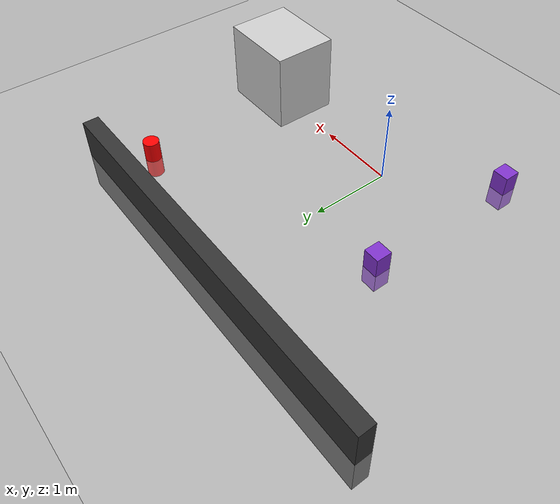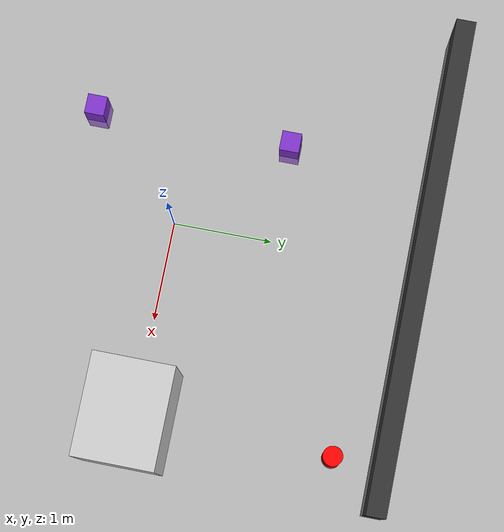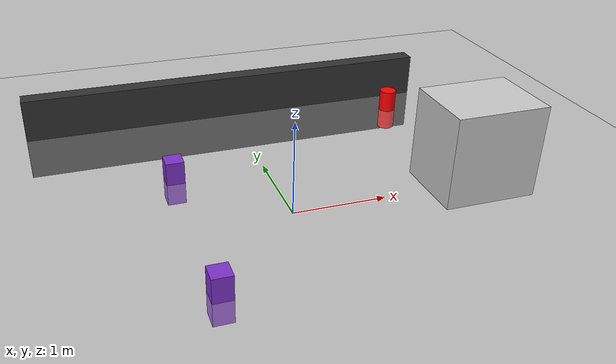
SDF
<?xml version="1.0" ?>
<sdf version="1.7">
  <world name="jetbot_world">
    <!-- Include the sun -->
    <include>
      <uri>model://sun</uri>
    </include>

    <!-- Add ground plane -->
    <include>
      <uri>model://ground_plane</uri>
    </include>

    <!-- Physics engine -->
    <physics name="1ms" type="ode">
      <max_step_size>0.001</max_step_size>
      <real_time_factor>1</real_time_factor>
      <real_time_update_rate>1000</real_time_update_rate>
    </physics>

    <!-- Add some objects for navigation -->
    <model name="table1">
      <pose>2 0 0 0 0 0</pose>
      <link name="link">
        <pose>0 0 0.5 0 0 0</pose>
        <collision name="collision">
          <geometry>
            <box>
              <size>1 0.8 1</size>
            </box>
          </geometry>
        </collision>
        <visual name="visual">
          <geometry>
            <box>
              <size>1 0.8 1</size>
            </box>
          </geometry>
          <material>
            <ambient>0.8 0.8 0.8 1</ambient>
            <diffuse>0.8 0.8 0.8 1</diffuse>
            <specular>0.8 0.8 0.8 1</specular>
          </material>
        </visual>
        <inertial>
          <mass>10</mass>
          <inertia>
            <ixx>1</ixx>
            <ixy>0</ixy>
            <ixz>0</ixz>
            <iyy>1</iyy>
            <iyz>0</iyz>
            <izz>1</izz>
          </inertia>
        </inertial>
      </link>
    </model>

    <model name="obstacle1">
      <pose>-1 1 0 0 0 0</pose>
      <link name="link">
        <collision name="collision">
          <geometry>
            <box>
              <size>0.2 0.2 0.5</size>
            </box>
          </geometry>
        </collision>
        <visual name="visual">
          <geometry>
            <box>
              <size>0.2 0.2 0.5</size>
            </box>
          </geometry>
          <material>
            <ambient>0.5 0.2 0.8 1</ambient>
            <diffuse>0.5 0.2 0.8 1</diffuse>
            <specular>0.5 0.2 0.8 1</specular>
          </material>
        </visual>
        <inertial>
          <mass>1</mass>
          <inertia>
            <ixx>1</ixx>
            <ixy>0</ixy>
            <ixz>0</ixz>
            <iyy>1</iyy>
            <iyz>0</iyz>
            <izz>1</izz>
          </inertia>
        </inertial>
      </link>
    </model>

    <model name="obstacle2">
      <pose>-1 -1 0 0 0 0</pose>
      <link name="link">
        <collision name="collision">
          <geometry>
            <box>
              <size>0.2 0.2 0.5</size>
            </box>
          </geometry>
        </collision>
        <visual name="visual">
          <geometry>
            <box>
              <size>0.2 0.2 0.5</size>
            </box>
          </geometry>
          <material>
            <ambient>0.5 0.2 0.8 1</ambient>
            <diffuse>0.5 0.2 0.8 1</diffuse>
            <specular>0.5 0.2 0.8 1</specular>
          </material>
        </visual>
        <inertial>
          <mass>1</mass>
          <inertia>
            <ixx>1</ixx>
            <ixy>0</ixy>
            <ixz>0</ixz>
            <iyy>1</iyy>
            <iyz>0</iyz>
            <izz>1</izz>
          </inertia>
        </inertial>
      </link>
    </model>

    <!-- Add a wall -->
    <model name="wall1">
      <pose>0 2.5 0 0 0 0</pose>
      <link name="link">
        <collision name="collision">
          <geometry>
            <box>
              <size>5 0.2 1</size>
            </box>
          </geometry>
        </collision>
        <visual name="visual">
          <geometry>
            <box>
              <size>5 0.2 1</size>
            </box>
          </geometry>
          <material>
            <ambient>0.2 0.2 0.2 1</ambient>
            <diffuse>0.2 0.2 0.2 1</diffuse>
            <specular>0.2 0.2 0.2 1</specular>
          </material>
        </visual>
        <inertial>
          <mass>100</mass>
          <inertia>
            <ixx>1</ixx>
            <ixy>0</ixy>
            <ixz>0</ixz>
            <iyy>1</iyy>
            <iyz>0</iyz>
            <izz>1</izz>
          </inertia>
        </inertial>
      </link>
    </model>

    <!-- Add a target object -->
    <model name="target">
      <pose>2 2 0 0 0 0</pose>
      <link name="link">
        <collision name="collision">
          <geometry>
            <cylinder>
              <radius>0.1</radius>
              <length>0.5</length>
            </cylinder>
          </geometry>
        </collision>
        <visual name="visual">
          <geometry>
            <cylinder>
              <radius>0.1</radius>
              <length>0.5</length>
            </cylinder>
          </geometry>
          <material>
            <ambient>1 0 0 1</ambient>
            <diffuse>1 0 0 1</diffuse>
            <specular>1 0 0 1</specular>
          </material>
        </visual>
        <inertial>
          <mass>1</mass>
          <inertia>
            <ixx>1</ixx>
            <ixy>0</ixy>
            <ixz>0</ixz>
            <iyy>1</iyy>
            <iyz>0</iyz>
            <izz>1</izz>
          </inertia>
        </inertial>
      </link>
    </model>

  </world>
</sdf>
